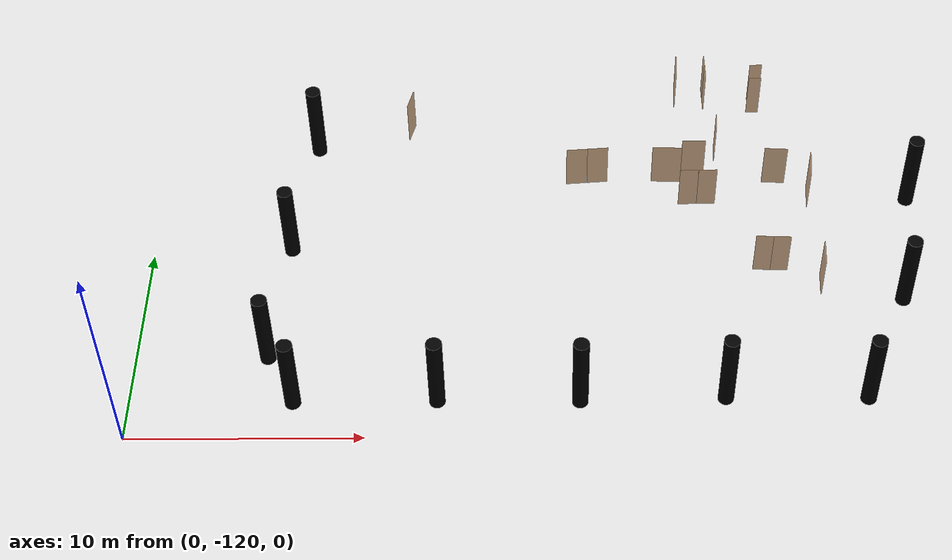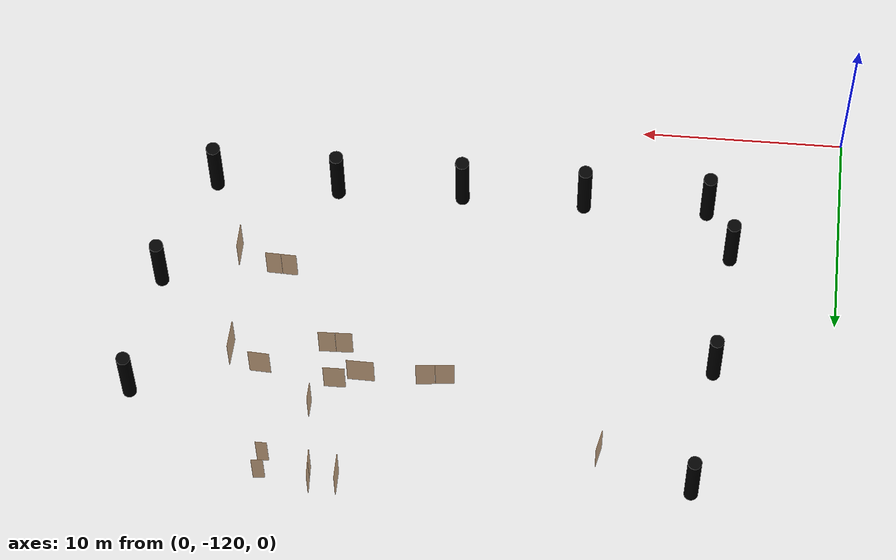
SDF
<sdf version="1.7">
 <world name="world">
  <model name="D70">
   <pose>23.8285 -99.9244 0 0 0 -1.60901</pose>
   <link name="right">
    <pose>0 0 1.11 0 -0 0</pose>
    <visual name="right_visual">
     <geometry><box><size>1.20666 0.03 2.2</size></box></geometry>
     <material><ambient>0.5 0.25 0 0.6</ambient><diffuse>0.5 0.25 0 0.6</diffuse></material>
    </visual>
    <collision name="right_collision">
     <geometry><box><size>1.20666 0.03 2.2</size></box></geometry>
     <surface><contact><collide_bitmask>2</collide_bitmask></contact></surface>
    </collision>
    <inertial>
     <mass>50</mass>
     <inertia><ixx>20.1704</ixx><iyy>26.2335</iyy><izz>6.07056</izz><ixy>0</ixy><ixz>0</ixz><iyz>0</iyz></inertia>
    </inertial>
   </link>
   <joint name="right_joint" type="revolute">
    <parent>world</parent>
    <child>right</child>
    <axis>
     <xyz>0 0 1</xyz>
     <limit><lower>0</lower><upper>1.57</upper></limit>
     <dynamics><spring_reference>0</spring_reference><spring_stiffness>0</spring_stiffness></dynamics>
    </axis>
    <pose>0.608331 0 0 0 -0 0</pose>
   </joint>
   <plugin name="door_D70" filename="libdoor.so">
    <v_max_door>0.5</v_max_door>
    <a_max_door>0.3</a_max_door>
    <a_nom_door>0.15</a_nom_door>
    <dx_min_door>0.01</dx_min_door>
    <f_max_door>500.0</f_max_door>
    <door name="D70" type="SwingDoor" left_joint_name="empty_joint" right_joint_name="right_joint"/>
   </plugin>
  </model>
  <model name="D71">
   <pose>27.6293 -99.9583 0 0 -0 0.083125</pose>
   <link name="right">
    <pose>0 0 1.11 0 -0 0</pose>
    <visual name="right_visual">
     <geometry><box><size>0.578492 0.03 2.2</size></box></geometry>
     <material><ambient>0.5 0.25 0 0.6</ambient><diffuse>0.5 0.25 0 0.6</diffuse></material>
    </visual>
    <collision name="right_collision">
     <geometry><box><size>0.578492 0.03 2.2</size></box></geometry>
     <surface><contact><collide_bitmask>2</collide_bitmask></contact></surface>
    </collision>
    <inertial>
     <mass>50</mass>
     <inertia><ixx>20.1704</ixx><iyy>21.5611</iyy><izz>1.39814</izz><ixy>0</ixy><ixz>0</ixz><iyz>0</iyz></inertia>
    </inertial>
   </link>
   <joint name="right_joint" type="revolute">
    <parent>world</parent>
    <child>right</child>
    <axis>
     <xyz>0 0 -1</xyz>
     <limit><lower>0</lower><upper>1.57</upper></limit>
     <dynamics><spring_reference>0</spring_reference><spring_stiffness>0</spring_stiffness></dynamics>
    </axis>
    <pose>0.294246 0 0 0 -0 0</pose>
   </joint>
   <plugin name="door_D71" filename="libdoor.so">
    <v_max_door>0.5</v_max_door>
    <a_max_door>0.3</a_max_door>
    <a_nom_door>0.15</a_nom_door>
    <dx_min_door>0.01</dx_min_door>
    <f_max_door>500.0</f_max_door>
    <door name="D71" type="SwingDoor" left_joint_name="empty_joint" right_joint_name="right_joint"/>
   </plugin>
  </model>
  <model name="D72">
   <pose>27.5189 -100.877 -0 0 0 -0.018329</pose>
   <link name="right">
    <pose>0 0 1.11 0 -0 0</pose>
    <visual name="right_visual">
     <geometry><box><size>0.571456 0.03 2.2</size></box></geometry>
     <material><ambient>0.5 0.25 0 0.6</ambient><diffuse>0.5 0.25 0 0.6</diffuse></material>
    </visual>
    <collision name="right_collision">
     <geometry><box><size>0.571456 0.03 2.2</size></box></geometry>
     <surface><contact><collide_bitmask>2</collide_bitmask></contact></surface>
    </collision>
    <inertial>
     <mass>50</mass>
     <inertia><ixx>20.1704</ixx><iyy>21.5273</iyy><izz>1.36443</izz><ixy>0</ixy><ixz>0</ixz><iyz>0</iyz></inertia>
    </inertial>
   </link>
   <joint name="right_joint" type="revolute">
    <parent>world</parent>
    <child>right</child>
    <axis>
     <xyz>0 0 1</xyz>
     <limit><lower>0</lower><upper>1.57</upper></limit>
     <dynamics><spring_reference>0</spring_reference><spring_stiffness>0</spring_stiffness></dynamics>
    </axis>
    <pose>0.290728 0 0 0 -0 0</pose>
   </joint>
   <plugin name="door_D72" filename="libdoor.so">
    <v_max_door>0.5</v_max_door>
    <a_max_door>0.3</a_max_door>
    <a_nom_door>0.15</a_nom_door>
    <dx_min_door>0.01</dx_min_door>
    <f_max_door>500.0</f_max_door>
    <door name="D72" type="SwingDoor" left_joint_name="empty_joint" right_joint_name="right_joint"/>
   </plugin>
  </model>
  <model name="D73">
   <pose>25.4949 -103.731 -0 0 0 -1.63114</pose>
   <link name="right">
    <pose>0 0 1.11 0 -0 0</pose>
    <visual name="right_visual">
     <geometry><box><size>0.837846 0.03 2.2</size></box></geometry>
     <material><ambient>0.5 0.25 0 0.6</ambient><diffuse>0.5 0.25 0 0.6</diffuse></material>
    </visual>
    <collision name="right_collision">
     <geometry><box><size>0.837846 0.03 2.2</size></box></geometry>
     <surface><contact><collide_bitmask>2</collide_bitmask></contact></surface>
    </collision>
    <inertial>
     <mass>50</mass>
     <inertia><ixx>20.1704</ixx><iyy>23.0916</iyy><izz>2.92869</izz><ixy>0</ixy><ixz>0</ixz><iyz>0</iyz></inertia>
    </inertial>
   </link>
   <joint name="right_joint" type="revolute">
    <parent>world</parent>
    <child>right</child>
    <axis>
     <xyz>0 0 1</xyz>
     <limit><lower>0</lower><upper>1.57</upper></limit>
     <dynamics><spring_reference>0</spring_reference><spring_stiffness>0</spring_stiffness></dynamics>
    </axis>
    <pose>0.423923 0 0 0 -0 0</pose>
   </joint>
   <plugin name="door_D73" filename="libdoor.so">
    <v_max_door>0.5</v_max_door>
    <a_max_door>0.3</a_max_door>
    <a_nom_door>0.15</a_nom_door>
    <dx_min_door>0.01</dx_min_door>
    <f_max_door>500.0</f_max_door>
    <door name="D73" type="SwingDoor" left_joint_name="empty_joint" right_joint_name="right_joint"/>
   </plugin>
  </model>
  <model name="D74">
   <pose>24.3844 -105.005 0 0 -0 3.14159</pose>
   <link name="right">
    <pose>0 0 1.11 0 -0 0</pose>
    <visual name="right_visual">
     <geometry><box><size>1.06712 0.03 2.2</size></box></geometry>
     <material><ambient>0.5 0.25 0 0.6</ambient><diffuse>0.5 0.25 0 0.6</diffuse></material>
    </visual>
    <collision name="right_collision">
     <geometry><box><size>1.06712 0.03 2.2</size></box></geometry>
     <surface><contact><collide_bitmask>2</collide_bitmask></contact></surface>
    </collision>
    <inertial>
     <mass>50</mass>
     <inertia><ixx>20.1704</ixx><iyy>24.9115</iyy><izz>4.74855</izz><ixy>0</ixy><ixz>0</ixz><iyz>0</iyz></inertia>
    </inertial>
   </link>
   <joint name="right_joint" type="revolute">
    <parent>world</parent>
    <child>right</child>
    <axis>
     <xyz>0 0 1</xyz>
     <limit><lower>0</lower><upper>1.57</upper></limit>
     <dynamics><spring_reference>0</spring_reference><spring_stiffness>0</spring_stiffness></dynamics>
    </axis>
    <pose>0.538562 0 0 0 -0 0</pose>
   </joint>
   <plugin name="door_D74" filename="libdoor.so">
    <v_max_door>0.5</v_max_door>
    <a_max_door>0.3</a_max_door>
    <a_nom_door>0.15</a_nom_door>
    <dx_min_door>0.01</dx_min_door>
    <f_max_door>500.0</f_max_door>
    <door name="D74" type="SwingDoor" left_joint_name="empty_joint" right_joint_name="right_joint"/>
   </plugin>
  </model>
  <model name="D75">
   <pose>23.136 -105.456 -0 0 -0 3.1149</pose>
   <link name="right">
    <pose>0 0 1.11 0 -0 0</pose>
    <visual name="right_visual">
     <geometry><box><size>1.34491 0.03 2.2</size></box></geometry>
     <material><ambient>0.5 0.25 0 0.6</ambient><diffuse>0.5 0.25 0 0.6</diffuse></material>
    </visual>
    <collision name="right_collision">
     <geometry><box><size>1.34491 0.03 2.2</size></box></geometry>
     <surface><contact><collide_bitmask>2</collide_bitmask></contact></surface>
    </collision>
    <inertial>
     <mass>50</mass>
     <inertia><ixx>20.1704</ixx><iyy>27.7032</iyy><izz>7.54032</izz><ixy>0</ixy><ixz>0</ixz><iyz>0</iyz></inertia>
    </inertial>
   </link>
   <joint name="right_joint" type="revolute">
    <parent>world</parent>
    <child>right</child>
    <axis>
     <xyz>0 0 -1</xyz>
     <limit><lower>0</lower><upper>1.57</upper></limit>
     <dynamics><spring_reference>0</spring_reference><spring_stiffness>0</spring_stiffness></dynamics>
    </axis>
    <pose>0.677454 0 0 0 -0 0</pose>
   </joint>
   <plugin name="door_D75" filename="libdoor.so">
    <v_max_door>0.5</v_max_door>
    <a_max_door>0.3</a_max_door>
    <a_nom_door>0.15</a_nom_door>
    <dx_min_door>0.01</dx_min_door>
    <f_max_door>500.0</f_max_door>
    <door name="D75" type="SwingDoor" left_joint_name="empty_joint" right_joint_name="right_joint"/>
   </plugin>
  </model>
  <model name="D76">
   <pose>28.1097 -105.554 0 0 -0 3.08127</pose>
   <link name="right">
    <pose>0 0 1.11 0 -0 0</pose>
    <visual name="right_visual">
     <geometry><box><size>1.05069 0.03 2.2</size></box></geometry>
     <material><ambient>0.5 0.25 0 0.6</ambient><diffuse>0.5 0.25 0 0.6</diffuse></material>
    </visual>
    <collision name="right_collision">
     <geometry><box><size>1.05069 0.03 2.2</size></box></geometry>
     <surface><contact><collide_bitmask>2</collide_bitmask></contact></surface>
    </collision>
    <inertial>
     <mass>50</mass>
     <inertia><ixx>20.1704</ixx><iyy>24.7664</iyy><izz>4.60351</izz><ixy>0</ixy><ixz>0</ixz><iyz>0</iyz></inertia>
    </inertial>
   </link>
   <joint name="right_joint" type="revolute">
    <parent>world</parent>
    <child>right</child>
    <axis>
     <xyz>0 0 1</xyz>
     <limit><lower>0</lower><upper>1.57</upper></limit>
     <dynamics><spring_reference>0</spring_reference><spring_stiffness>0</spring_stiffness></dynamics>
    </axis>
    <pose>0.530343 0 0 0 -0 0</pose>
   </joint>
   <plugin name="door_D76" filename="libdoor.so">
    <v_max_door>0.5</v_max_door>
    <a_max_door>0.3</a_max_door>
    <a_nom_door>0.15</a_nom_door>
    <dx_min_door>0.01</dx_min_door>
    <f_max_door>500.0</f_max_door>
    <door name="D76" type="SwingDoor" left_joint_name="empty_joint" right_joint_name="right_joint"/>
   </plugin>
  </model>
  <model name="D77">
   <pose>29.6018 -106.475 -0 0 -0 1.48529</pose>
   <link name="right">
    <pose>0 0 1.11 0 -0 0</pose>
    <visual name="right_visual">
     <geometry><box><size>1.35736 0.03 2.2</size></box></geometry>
     <material><ambient>0.5 0.25 0 0.6</ambient><diffuse>0.5 0.25 0 0.6</diffuse></material>
    </visual>
    <collision name="right_collision">
     <geometry><box><size>1.35736 0.03 2.2</size></box></geometry>
     <surface><contact><collide_bitmask>2</collide_bitmask></contact></surface>
    </collision>
    <inertial>
     <mass>50</mass>
     <inertia><ixx>20.1704</ixx><iyy>27.8434</iyy><izz>7.68048</izz><ixy>0</ixy><ixz>0</ixz><iyz>0</iyz></inertia>
    </inertial>
   </link>
   <joint name="right_joint" type="revolute">
    <parent>world</parent>
    <child>right</child>
    <axis>
     <xyz>0 0 1</xyz>
     <limit><lower>0</lower><upper>1.57</upper></limit>
     <dynamics><spring_reference>0</spring_reference><spring_stiffness>0</spring_stiffness></dynamics>
    </axis>
    <pose>0.683678 0 0 0 -0 0</pose>
   </joint>
   <plugin name="door_D77" filename="libdoor.so">
    <v_max_door>0.5</v_max_door>
    <a_max_door>0.3</a_max_door>
    <a_nom_door>0.15</a_nom_door>
    <dx_min_door>0.01</dx_min_door>
    <f_max_door>500.0</f_max_door>
    <door name="D77" type="SwingDoor" left_joint_name="empty_joint" right_joint_name="right_joint"/>
   </plugin>
  </model>
  <model name="D78">
   <pose>29.6954 -111.814 -0 0 -0 1.51211</pose>
   <link name="right">
    <pose>0 0 1.11 0 -0 0</pose>
    <visual name="right_visual">
     <geometry><box><size>1.17675 0.03 2.2</size></box></geometry>
     <material><ambient>0.5 0.25 0 0.6</ambient><diffuse>0.5 0.25 0 0.6</diffuse></material>
    </visual>
    <collision name="right_collision">
     <geometry><box><size>1.17675 0.03 2.2</size></box></geometry>
     <surface><contact><collide_bitmask>2</collide_bitmask></contact></surface>
    </collision>
    <inertial>
     <mass>50</mass>
     <inertia><ixx>20.1704</ixx><iyy>25.9365</iyy><izz>5.77354</izz><ixy>0</ixy><ixz>0</ixz><iyz>0</iyz></inertia>
    </inertial>
   </link>
   <joint name="right_joint" type="revolute">
    <parent>world</parent>
    <child>right</child>
    <axis>
     <xyz>0 0 1</xyz>
     <limit><lower>0</lower><upper>1.57</upper></limit>
     <dynamics><spring_reference>0</spring_reference><spring_stiffness>0</spring_stiffness></dynamics>
    </axis>
    <pose>0.593377 0 0 0 -0 0</pose>
   </joint>
   <plugin name="door_D78" filename="libdoor.so">
    <v_max_door>0.5</v_max_door>
    <a_max_door>0.3</a_max_door>
    <a_nom_door>0.15</a_nom_door>
    <dx_min_door>0.01</dx_min_door>
    <f_max_door>500.0</f_max_door>
    <door name="D78" type="SwingDoor" left_joint_name="empty_joint" right_joint_name="right_joint"/>
   </plugin>
  </model>
  <model name="D79">
   <pose>11.2657 -102.182 0 0 -0 1.32947</pose>
   <link name="right">
    <pose>0 0 1.11 0 -0 0</pose>
    <visual name="right_visual">
     <geometry><box><size>1.03505 0.03 2.2</size></box></geometry>
     <material><ambient>0.5 0.25 0 0.6</ambient><diffuse>0.5 0.25 0 0.6</diffuse></material>
    </visual>
    <collision name="right_collision">
     <geometry><box><size>1.03505 0.03 2.2</size></box></geometry>
     <surface><contact><collide_bitmask>2</collide_bitmask></contact></surface>
    </collision>
    <inertial>
     <mass>50</mass>
     <inertia><ixx>20.1704</ixx><iyy>24.6306</iyy><izz>4.46764</izz><ixy>0</ixy><ixz>0</ixz><iyz>0</iyz></inertia>
    </inertial>
   </link>
   <joint name="right_joint" type="revolute">
    <parent>world</parent>
    <child>right</child>
    <axis>
     <xyz>0 0 1</xyz>
     <limit><lower>0</lower><upper>1.57</upper></limit>
     <dynamics><spring_reference>0</spring_reference><spring_stiffness>0</spring_stiffness></dynamics>
    </axis>
    <pose>0.522526 0 0 0 -0 0</pose>
   </joint>
   <plugin name="door_D79" filename="libdoor.so">
    <v_max_door>0.5</v_max_door>
    <a_max_door>0.3</a_max_door>
    <a_nom_door>0.15</a_nom_door>
    <dx_min_door>0.01</dx_min_door>
    <f_max_door>500.0</f_max_door>
    <door name="D79" type="SwingDoor" left_joint_name="empty_joint" right_joint_name="right_joint"/>
   </plugin>
  </model>
  <model name="DH12">
   <pose>25.1811 -100.001 -0 0 -0 1.58151</pose>
   <link name="right">
    <pose>0.343926 0 1.11 0 -0 0</pose>
    <visual name="right_visual">
     <geometry><box><size>0.677852 0.03 2.2</size></box></geometry>
     <material><ambient>0.5 0.25 0 0.6</ambient><diffuse>0.5 0.25 0 0.6</diffuse></material>
    </visual>
    <collision name="right_collision">
     <geometry><box><size>0.677852 0.03 2.2</size></box></geometry>
     <surface><contact><collide_bitmask>2</collide_bitmask></contact></surface>
    </collision>
    <inertial>
     <mass>50</mass>
     <inertia><ixx>20.1704</ixx><iyy>22.0812</iyy><izz>1.91826</izz><ixy>0</ixy><ixz>0</ixz><iyz>0</iyz></inertia>
    </inertial>
   </link>
   <joint name="right_joint" type="revolute">
    <parent>world</parent>
    <child>right</child>
    <axis>
     <xyz>0 0 -1</xyz>
     <limit><lower>0</lower><upper>1.57</upper></limit>
     <dynamics><spring_reference>0</spring_reference><spring_stiffness>0</spring_stiffness></dynamics>
    </axis>
    <pose>0.343926 0 0 0 -0 0</pose>
   </joint>
   <link name="left">
    <pose>-0.343926 0 1.11 0 -0 0</pose>
    <visual name="left_visual">
     <geometry><box><size>0.677852 0.03 2.2</size></box></geometry>
     <material><ambient>0.5 0.25 0 0.6</ambient><diffuse>0.5 0.25 0 0.6</diffuse></material>
    </visual>
    <collision name="left_collision">
     <geometry><box><size>0.677852 0.03 2.2</size></box></geometry>
     <surface><contact><collide_bitmask>2</collide_bitmask></contact></surface>
    </collision>
    <inertial>
     <mass>50</mass>
     <inertia><ixx>20.1704</ixx><iyy>22.0812</iyy><izz>1.91826</izz><ixy>0</ixy><ixz>0</ixz><iyz>0</iyz></inertia>
    </inertial>
   </link>
   <joint name="left_joint" type="revolute">
    <parent>world</parent>
    <child>left</child>
    <axis>
     <xyz>0 0 -1</xyz>
     <limit><lower>-1.57</lower><upper>0</upper></limit>
     <dynamics><spring_reference>0</spring_reference><spring_stiffness>0</spring_stiffness></dynamics>
    </axis>
    <pose>-0.343926 0 0 0 -0 0</pose>
   </joint>
   <plugin name="door_DH12" filename="libdoor.so">
    <v_max_door>0.5</v_max_door>
    <a_max_door>0.3</a_max_door>
    <a_nom_door>0.15</a_nom_door>
    <dx_min_door>0.01</dx_min_door>
    <f_max_door>500.0</f_max_door>
    <door name="DH12" type="DoubleSwingDoor" left_joint_name="left_joint" right_joint_name="right_joint"/>
   </plugin>
  </model>
  <model name="DH13">
   <pose>19.4764 -105.514 0 0 -0 -3.06198</pose>
   <link name="right">
    <pose>0.47684 0 1.11 0 -0 0</pose>
    <visual name="right_visual">
     <geometry><box><size>0.94368 0.03 2.2</size></box></geometry>
     <material><ambient>0.5 0.25 0 0.6</ambient><diffuse>0.5 0.25 0 0.6</diffuse></material>
    </visual>
    <collision name="right_collision">
     <geometry><box><size>0.94368 0.03 2.2</size></box></geometry>
     <surface><contact><collide_bitmask>2</collide_bitmask></contact></surface>
    </collision>
    <inertial>
     <mass>50</mass>
     <inertia><ixx>20.1704</ixx><iyy>23.8772</iyy><izz>3.7143</izz><ixy>0</ixy><ixz>0</ixz><iyz>0</iyz></inertia>
    </inertial>
   </link>
   <joint name="right_joint" type="revolute">
    <parent>world</parent>
    <child>right</child>
    <axis>
     <xyz>0 0 -1</xyz>
     <limit><lower>0</lower><upper>1.57</upper></limit>
     <dynamics><spring_reference>0</spring_reference><spring_stiffness>0</spring_stiffness></dynamics>
    </axis>
    <pose>0.47684 0 0 0 -0 0</pose>
   </joint>
   <link name="left">
    <pose>-0.47684 0 1.11 0 -0 0</pose>
    <visual name="left_visual">
     <geometry><box><size>0.94368 0.03 2.2</size></box></geometry>
     <material><ambient>0.5 0.25 0 0.6</ambient><diffuse>0.5 0.25 0 0.6</diffuse></material>
    </visual>
    <collision name="left_collision">
     <geometry><box><size>0.94368 0.03 2.2</size></box></geometry>
     <surface><contact><collide_bitmask>2</collide_bitmask></contact></surface>
    </collision>
    <inertial>
     <mass>50</mass>
     <inertia><ixx>20.1704</ixx><iyy>23.8772</iyy><izz>3.7143</izz><ixy>0</ixy><ixz>0</ixz><iyz>0</iyz></inertia>
    </inertial>
   </link>
   <joint name="left_joint" type="revolute">
    <parent>world</parent>
    <child>left</child>
    <axis>
     <xyz>0 0 -1</xyz>
     <limit><lower>-1.57</lower><upper>0</upper></limit>
     <dynamics><spring_reference>0</spring_reference><spring_stiffness>0</spring_stiffness></dynamics>
    </axis>
    <pose>-0.47684 0 0 0 -0 0</pose>
   </joint>
   <plugin name="door_DH13" filename="libdoor.so">
    <v_max_door>0.5</v_max_door>
    <a_max_door>0.3</a_max_door>
    <a_nom_door>0.15</a_nom_door>
    <dx_min_door>0.01</dx_min_door>
    <f_max_door>500.0</f_max_door>
    <door name="DH13" type="DoubleSwingDoor" left_joint_name="left_joint" right_joint_name="right_joint"/>
   </plugin>
  </model>
  <model name="DH14">
   <pose>24.4846 -106.881 -0 0 0 -3.1231</pose>
   <link name="right">
    <pose>0.422459 0 1.11 0 -0 0</pose>
    <visual name="right_visual">
     <geometry><box><size>0.834918 0.03 2.2</size></box></geometry>
     <material><ambient>0.5 0.25 0 0.6</ambient><diffuse>0.5 0.25 0 0.6</diffuse></material>
    </visual>
    <collision name="right_collision">
     <geometry><box><size>0.834918 0.03 2.2</size></box></geometry>
     <surface><contact><collide_bitmask>2</collide_bitmask></contact></surface>
    </collision>
    <inertial>
     <mass>50</mass>
     <inertia><ixx>20.1704</ixx><iyy>23.0712</iyy><izz>2.90828</izz><ixy>0</ixy><ixz>0</ixz><iyz>0</iyz></inertia>
    </inertial>
   </link>
   <joint name="right_joint" type="revolute">
    <parent>world</parent>
    <child>right</child>
    <axis>
     <xyz>0 0 -1</xyz>
     <limit><lower>0</lower><upper>1.57</upper></limit>
     <dynamics><spring_reference>0</spring_reference><spring_stiffness>0</spring_stiffness></dynamics>
    </axis>
    <pose>0.422459 0 0 0 -0 0</pose>
   </joint>
   <link name="left">
    <pose>-0.422459 0 1.11 0 -0 0</pose>
    <visual name="left_visual">
     <geometry><box><size>0.834918 0.03 2.2</size></box></geometry>
     <material><ambient>0.5 0.25 0 0.6</ambient><diffuse>0.5 0.25 0 0.6</diffuse></material>
    </visual>
    <collision name="left_collision">
     <geometry><box><size>0.834918 0.03 2.2</size></box></geometry>
     <surface><contact><collide_bitmask>2</collide_bitmask></contact></surface>
    </collision>
    <inertial>
     <mass>50</mass>
     <inertia><ixx>20.1704</ixx><iyy>23.0712</iyy><izz>2.90828</izz><ixy>0</ixy><ixz>0</ixz><iyz>0</iyz></inertia>
    </inertial>
   </link>
   <joint name="left_joint" type="revolute">
    <parent>world</parent>
    <child>left</child>
    <axis>
     <xyz>0 0 -1</xyz>
     <limit><lower>-1.57</lower><upper>0</upper></limit>
     <dynamics><spring_reference>0</spring_reference><spring_stiffness>0</spring_stiffness></dynamics>
    </axis>
    <pose>-0.422459 0 0 0 -0 0</pose>
   </joint>
   <plugin name="door_DH14" filename="libdoor.so">
    <v_max_door>0.5</v_max_door>
    <a_max_door>0.3</a_max_door>
    <a_nom_door>0.15</a_nom_door>
    <dx_min_door>0.01</dx_min_door>
    <f_max_door>500.0</f_max_door>
    <door name="DH14" type="DoubleSwingDoor" left_joint_name="left_joint" right_joint_name="right_joint"/>
   </plugin>
  </model>
  <model name="DH15">
   <pose>27.5258 -110.926 0 0 -0 3.0996</pose>
   <link name="right">
    <pose>0.386363 0 1.11 0 -0 0</pose>
    <visual name="right_visual">
     <geometry><box><size>0.762727 0.03 2.2</size></box></geometry>
     <material><ambient>0.5 0.25 0 0.6</ambient><diffuse>0.5 0.25 0 0.6</diffuse></material>
    </visual>
    <collision name="right_collision">
     <geometry><box><size>0.762727 0.03 2.2</size></box></geometry>
     <surface><contact><collide_bitmask>2</collide_bitmask></contact></surface>
    </collision>
    <inertial>
     <mass>50</mass>
     <inertia><ixx>20.1704</ixx><iyy>22.5906</iyy><izz>2.42772</izz><ixy>0</ixy><ixz>0</ixz><iyz>0</iyz></inertia>
    </inertial>
   </link>
   <joint name="right_joint" type="revolute">
    <parent>world</parent>
    <child>right</child>
    <axis>
     <xyz>0 0 -1</xyz>
     <limit><lower>0</lower><upper>1.57</upper></limit>
     <dynamics><spring_reference>0</spring_reference><spring_stiffness>0</spring_stiffness></dynamics>
    </axis>
    <pose>0.386363 0 0 0 -0 0</pose>
   </joint>
   <link name="left">
    <pose>-0.386363 0 1.11 0 -0 0</pose>
    <visual name="left_visual">
     <geometry><box><size>0.762727 0.03 2.2</size></box></geometry>
     <material><ambient>0.5 0.25 0 0.6</ambient><diffuse>0.5 0.25 0 0.6</diffuse></material>
    </visual>
    <collision name="left_collision">
     <geometry><box><size>0.762727 0.03 2.2</size></box></geometry>
     <surface><contact><collide_bitmask>2</collide_bitmask></contact></surface>
    </collision>
    <inertial>
     <mass>50</mass>
     <inertia><ixx>20.1704</ixx><iyy>22.5906</iyy><izz>2.42772</izz><ixy>0</ixy><ixz>0</ixz><iyz>0</iyz></inertia>
    </inertial>
   </link>
   <joint name="left_joint" type="revolute">
    <parent>world</parent>
    <child>left</child>
    <axis>
     <xyz>0 0 -1</xyz>
     <limit><lower>-1.57</lower><upper>0</upper></limit>
     <dynamics><spring_reference>0</spring_reference><spring_stiffness>0</spring_stiffness></dynamics>
    </axis>
    <pose>-0.386363 0 0 0 -0 0</pose>
   </joint>
   <plugin name="door_DH15" filename="libdoor.so">
    <v_max_door>0.5</v_max_door>
    <a_max_door>0.3</a_max_door>
    <a_nom_door>0.15</a_nom_door>
    <dx_min_door>0.01</dx_min_door>
    <f_max_door>500.0</f_max_door>
    <door name="DH15" type="DoubleSwingDoor" left_joint_name="left_joint" right_joint_name="right_joint"/>
   </plugin>
  </model>
  <model name="CylinderBlock">
   <link name="link">
    <inertial>
     <mass>1</mass>
     <inertia><ixx>1</ixx><ixy>0</ixy><ixz>0</ixz><iyy>1</iyy><iyz>0</iyz><izz>1</izz></inertia>
    </inertial>
    <visual name="visual">
     <geometry><cylinder><radius>0.35</radius><length>4.0</length></cylinder></geometry>
     <material>
      <shader type="pixel"><normal_map>__default__</normal_map></shader>
      <script><name>ModelPreview_1::link::visual_MATERIAL_</name><uri>__default__</uri></script>
      <ambient>0 0 0 1</ambient>
      <diffuse>0 0 0 1</diffuse>
      <specular>0 0 0 1</specular>
      <emissive>0 0 0 1</emissive>
     </material>
    </visual>
    <collision name="collision">
     <geometry><cylinder><radius>0.35</radius><length>4.0</length></cylinder></geometry>
     <surface>
      <friction>
       <ode><mu>1</mu><mu2>1</mu2><fdir1>0 0 0</fdir1><slip1>0</slip1><slip2>0</slip2></ode>
       <torsional>
        <coefficient>1</coefficient>
        <patch_radius>0</patch_radius>
        <surface_radius>0</surface_radius>
        <use_patch_radius>1</use_patch_radius>
        <ode><slip>0</slip></ode>
       </torsional>
      </friction>
      <bounce><restitution_coefficient>0</restitution_coefficient><threshold>1e+06</threshold></bounce>
      <contact>
       <collide_without_contact>0</collide_without_contact>
       <collide_without_contact_bitmask>1</collide_without_contact_bitmask>
       <collide_bitmask>1</collide_bitmask>
       <ode>
        <soft_cfm>0</soft_cfm>
        <soft_erp>0.2</soft_erp>
        <kp>1e+13</kp>
        <kd>1</kd>
        <max_vel>0.01</max_vel>
        <min_depth>0</min_depth>
       </ode>
       <bullet>
        <split_impulse>1</split_impulse>
        <split_impulse_penetration_threshold>-0.01</split_impulse_penetration_threshold>
        <soft_cfm>0</soft_cfm>
        <soft_erp>0.2</soft_erp>
        <kp>1e+13</kp>
        <kd>1</kd>
       </bullet>
      </contact>
     </surface>
    </collision>
   </link>
   <static>1</static>
   <pose>31.4987 -116.615 0 0 -0 0</pose>
  </model>
  <model name="CylinderBlock_0">
   <link name="link">
    <inertial>
     <mass>1</mass>
     <inertia><ixx>1</ixx><ixy>0</ixy><ixz>0</ixz><iyy>1</iyy><iyz>0</iyz><izz>1</izz></inertia>
    </inertial>
    <visual name="visual">
     <geometry><cylinder><radius>0.35</radius><length>4.0</length></cylinder></geometry>
     <material>
      <shader type="pixel"><normal_map>__default__</normal_map></shader>
      <script><name>ModelPreview_1::link::visual_MATERIAL_</name><uri>__default__</uri></script>
      <ambient>0 0 0 1</ambient>
      <diffuse>0 0 0 1</diffuse>
      <specular>0 0 0 1</specular>
      <emissive>0 0 0 1</emissive>
     </material>
    </visual>
    <collision name="collision">
     <geometry><cylinder><radius>0.35</radius><length>4.0</length></cylinder></geometry>
     <surface>
      <friction>
       <ode><mu>1</mu><mu2>1</mu2><fdir1>0 0 0</fdir1><slip1>0</slip1><slip2>0</slip2></ode>
       <torsional>
        <coefficient>1</coefficient>
        <patch_radius>0</patch_radius>
        <surface_radius>0</surface_radius>
        <use_patch_radius>1</use_patch_radius>
        <ode><slip>0</slip></ode>
       </torsional>
      </friction>
      <bounce><restitution_coefficient>0</restitution_coefficient><threshold>1e+06</threshold></bounce>
      <contact>
       <collide_without_contact>0</collide_without_contact>
       <collide_without_contact_bitmask>1</collide_without_contact_bitmask>
       <collide_bitmask>1</collide_bitmask>
       <ode>
        <soft_cfm>0</soft_cfm>
        <soft_erp>0.2</soft_erp>
        <kp>1e+13</kp>
        <kd>1</kd>
        <max_vel>0.01</max_vel>
        <min_depth>0</min_depth>
       </ode>
       <bullet>
        <split_impulse>1</split_impulse>
        <split_impulse_penetration_threshold>-0.01</split_impulse_penetration_threshold>
        <soft_cfm>0</soft_cfm>
        <soft_erp>0.2</soft_erp>
        <kp>1e+13</kp>
        <kd>1</kd>
       </bullet>
      </contact>
     </surface>
    </collision>
   </link>
   <static>1</static>
   <pose>25.3062 -116.571 0 0 -0 0</pose>
  </model>
  <model name="CylinderBlock_1">
   <link name="link">
    <inertial>
     <mass>1</mass>
     <inertia><ixx>1</ixx><ixy>0</ixy><ixz>0</ixz><iyy>1</iyy><iyz>0</iyz><izz>1</izz></inertia>
    </inertial>
    <visual name="visual">
     <geometry><cylinder><radius>0.35</radius><length>4.0</length></cylinder></geometry>
     <material>
      <shader type="pixel"><normal_map>__default__</normal_map></shader>
      <script><name>ModelPreview_1::link::visual_MATERIAL_</name><uri>__default__</uri></script>
      <ambient>0 0 0 1</ambient>
      <diffuse>0 0 0 1</diffuse>
      <specular>0 0 0 1</specular>
      <emissive>0 0 0 1</emissive>
     </material>
    </visual>
    <collision name="collision">
     <geometry><cylinder><radius>0.35</radius><length>4.0</length></cylinder></geometry>
     <surface>
      <friction>
       <ode><mu>1</mu><mu2>1</mu2><fdir1>0 0 0</fdir1><slip1>0</slip1><slip2>0</slip2></ode>
       <torsional>
        <coefficient>1</coefficient>
        <patch_radius>0</patch_radius>
        <surface_radius>0</surface_radius>
        <use_patch_radius>1</use_patch_radius>
        <ode><slip>0</slip></ode>
       </torsional>
      </friction>
      <bounce><restitution_coefficient>0</restitution_coefficient><threshold>1e+06</threshold></bounce>
      <contact>
       <collide_without_contact>0</collide_without_contact>
       <collide_without_contact_bitmask>1</collide_without_contact_bitmask>
       <collide_bitmask>1</collide_bitmask>
       <ode>
        <soft_cfm>0</soft_cfm>
        <soft_erp>0.2</soft_erp>
        <kp>1e+13</kp>
        <kd>1</kd>
        <max_vel>0.01</max_vel>
        <min_depth>0</min_depth>
       </ode>
       <bullet>
        <split_impulse>1</split_impulse>
        <split_impulse_penetration_threshold>-0.01</split_impulse_penetration_threshold>
        <soft_cfm>0</soft_cfm>
        <soft_erp>0.2</soft_erp>
        <kp>1e+13</kp>
        <kd>1</kd>
       </bullet>
      </contact>
     </surface>
    </collision>
   </link>
   <static>1</static>
   <pose>18.9863 -116.702 0 0 -0 0</pose>
  </model>
  <model name="CylinderBlock_2">
   <link name="link">
    <inertial>
     <mass>1</mass>
     <inertia><ixx>1</ixx><ixy>0</ixy><ixz>0</ixz><iyy>1</iyy><iyz>0</iyz><izz>1</izz></inertia>
    </inertial>
    <visual name="visual">
     <geometry><cylinder><radius>0.35</radius><length>4.0</length></cylinder></geometry>
     <material>
      <shader type="pixel"><normal_map>__default__</normal_map></shader>
      <script><name>ModelPreview_1::link::visual_MATERIAL_</name><uri>__default__</uri></script>
      <ambient>0 0 0 1</ambient>
      <diffuse>0 0 0 1</diffuse>
      <specular>0 0 0 1</specular>
      <emissive>0 0 0 1</emissive>
     </material>
    </visual>
    <collision name="collision">
     <geometry><cylinder><radius>0.35</radius><length>4.0</length></cylinder></geometry>
     <surface>
      <friction>
       <ode><mu>1</mu><mu2>1</mu2><fdir1>0 0 0</fdir1><slip1>0</slip1><slip2>0</slip2></ode>
       <torsional>
        <coefficient>1</coefficient>
        <patch_radius>0</patch_radius>
        <surface_radius>0</surface_radius>
        <use_patch_radius>1</use_patch_radius>
        <ode><slip>0</slip></ode>
       </torsional>
      </friction>
      <bounce><restitution_coefficient>0</restitution_coefficient><threshold>1e+06</threshold></bounce>
      <contact>
       <collide_without_contact>0</collide_without_contact>
       <collide_without_contact_bitmask>1</collide_without_contact_bitmask>
       <collide_bitmask>1</collide_bitmask>
       <ode>
        <soft_cfm>0</soft_cfm>
        <soft_erp>0.2</soft_erp>
        <kp>1e+13</kp>
        <kd>1</kd>
        <max_vel>0.01</max_vel>
        <min_depth>0</min_depth>
       </ode>
       <bullet>
        <split_impulse>1</split_impulse>
        <split_impulse_penetration_threshold>-0.01</split_impulse_penetration_threshold>
        <soft_cfm>0</soft_cfm>
        <soft_erp>0.2</soft_erp>
        <kp>1e+13</kp>
        <kd>1</kd>
       </bullet>
      </contact>
     </surface>
    </collision>
   </link>
   <static>1</static>
   <pose>12.8044 -116.66 0 0 -0 0</pose>
  </model>
  <model name="CylinderBlock_3">
   <link name="link">
    <inertial>
     <mass>1</mass>
     <inertia><ixx>1</ixx><ixy>0</ixy><ixz>0</ixz><iyy>1</iyy><iyz>0</iyz><izz>1</izz></inertia>
    </inertial>
    <visual name="visual">
     <geometry><cylinder><radius>0.35</radius><length>4.0</length></cylinder></geometry>
     <material>
      <shader type="pixel"><normal_map>__default__</normal_map></shader>
      <script><name>ModelPreview_1::link::visual_MATERIAL_</name><uri>__default__</uri></script>
      <ambient>0 0 0 1</ambient>
      <diffuse>0 0 0 1</diffuse>
      <specular>0 0 0 1</specular>
      <emissive>0 0 0 1</emissive>
     </material>
    </visual>
    <collision name="collision">
     <geometry><cylinder><radius>0.35</radius><length>4.0</length></cylinder></geometry>
     <surface>
      <friction>
       <ode><mu>1</mu><mu2>1</mu2><fdir1>0 0 0</fdir1><slip1>0</slip1><slip2>0</slip2></ode>
       <torsional>
        <coefficient>1</coefficient>
        <patch_radius>0</patch_radius>
        <surface_radius>0</surface_radius>
        <use_patch_radius>1</use_patch_radius>
        <ode><slip>0</slip></ode>
       </torsional>
      </friction>
      <bounce><restitution_coefficient>0</restitution_coefficient><threshold>1e+06</threshold></bounce>
      <contact>
       <collide_without_contact>0</collide_without_contact>
       <collide_without_contact_bitmask>1</collide_without_contact_bitmask>
       <collide_bitmask>1</collide_bitmask>
       <ode>
        <soft_cfm>0</soft_cfm>
        <soft_erp>0.2</soft_erp>
        <kp>1e+13</kp>
        <kd>1</kd>
        <max_vel>0.01</max_vel>
        <min_depth>0</min_depth>
       </ode>
       <bullet>
        <split_impulse>1</split_impulse>
        <split_impulse_penetration_threshold>-0.01</split_impulse_penetration_threshold>
        <soft_cfm>0</soft_cfm>
        <soft_erp>0.2</soft_erp>
        <kp>1e+13</kp>
        <kd>1</kd>
       </bullet>
      </contact>
     </surface>
    </collision>
   </link>
   <static>1</static>
   <pose>6.55628 -116.696 0 0 -0 0</pose>
  </model>
  <model name="CylinderBlock_4">
   <link name="link">
    <inertial>
     <mass>1</mass>
     <inertia><ixx>1</ixx><ixy>0</ixy><ixz>0</ixz><iyy>1</iyy><iyz>0</iyz><izz>1</izz></inertia>
    </inertial>
    <visual name="visual">
     <geometry><cylinder><radius>0.35</radius><length>4.0</length></cylinder></geometry>
     <material>
      <shader type="pixel"><normal_map>__default__</normal_map></shader>
      <script><name>ModelPreview_1::link::visual_MATERIAL_</name><uri>__default__</uri></script>
      <ambient>0 0 0 1</ambient>
      <diffuse>0 0 0 1</diffuse>
      <specular>0 0 0 1</specular>
      <emissive>0 0 0 1</emissive>
     </material>
    </visual>
    <collision name="collision">
     <geometry><cylinder><radius>0.35</radius><length>4.0</length></cylinder></geometry>
     <surface>
      <friction>
       <ode><mu>1</mu><mu2>1</mu2><fdir1>0 0 0</fdir1><slip1>0</slip1><slip2>0</slip2></ode>
       <torsional>
        <coefficient>1</coefficient>
        <patch_radius>0</patch_radius>
        <surface_radius>0</surface_radius>
        <use_patch_radius>1</use_patch_radius>
        <ode><slip>0</slip></ode>
       </torsional>
      </friction>
      <bounce><restitution_coefficient>0</restitution_coefficient><threshold>1e+06</threshold></bounce>
      <contact>
       <collide_without_contact>0</collide_without_contact>
       <collide_without_contact_bitmask>1</collide_without_contact_bitmask>
       <collide_bitmask>1</collide_bitmask>
       <ode>
        <soft_cfm>0</soft_cfm>
        <soft_erp>0.2</soft_erp>
        <kp>1e+13</kp>
        <kd>1</kd>
        <max_vel>0.01</max_vel>
        <min_depth>0</min_depth>
       </ode>
       <bullet>
        <split_impulse>1</split_impulse>
        <split_impulse_penetration_threshold>-0.01</split_impulse_penetration_threshold>
        <soft_cfm>0</soft_cfm>
        <soft_erp>0.2</soft_erp>
        <kp>1e+13</kp>
        <kd>1</kd>
       </bullet>
      </contact>
     </surface>
    </collision>
   </link>
   <static>1</static>
   <pose>34.6793 -104.885 0 0 -0 0</pose>
  </model>
  <model name="CylinderBlock_5">
   <link name="link">
    <inertial>
     <mass>1</mass>
     <inertia><ixx>1</ixx><ixy>0</ixy><ixz>0</ixz><iyy>1</iyy><iyz>0</iyz><izz>1</izz></inertia>
    </inertial>
    <visual name="visual">
     <geometry><cylinder><radius>0.35</radius><length>4.0</length></cylinder></geometry>
     <material>
      <shader type="pixel"><normal_map>__default__</normal_map></shader>
      <script><name>ModelPreview_1::link::visual_MATERIAL_</name><uri>__default__</uri></script>
      <ambient>0 0 0 1</ambient>
      <diffuse>0 0 0 1</diffuse>
      <specular>0 0 0 1</specular>
      <emissive>0 0 0 1</emissive>
     </material>
    </visual>
    <collision name="collision">
     <geometry><cylinder><radius>0.35</radius><length>4.0</length></cylinder></geometry>
     <surface>
      <friction>
       <ode><mu>1</mu><mu2>1</mu2><fdir1>0 0 0</fdir1><slip1>0</slip1><slip2>0</slip2></ode>
       <torsional>
        <coefficient>1</coefficient>
        <patch_radius>0</patch_radius>
        <surface_radius>0</surface_radius>
        <use_patch_radius>1</use_patch_radius>
        <ode><slip>0</slip></ode>
       </torsional>
      </friction>
      <bounce><restitution_coefficient>0</restitution_coefficient><threshold>1e+06</threshold></bounce>
      <contact>
       <collide_without_contact>0</collide_without_contact>
       <collide_without_contact_bitmask>1</collide_without_contact_bitmask>
       <collide_bitmask>1</collide_bitmask>
       <ode>
        <soft_cfm>0</soft_cfm>
        <soft_erp>0.2</soft_erp>
        <kp>1e+13</kp>
        <kd>1</kd>
        <max_vel>0.01</max_vel>
        <min_depth>0</min_depth>
       </ode>
       <bullet>
        <split_impulse>1</split_impulse>
        <split_impulse_penetration_threshold>-0.01</split_impulse_penetration_threshold>
        <soft_cfm>0</soft_cfm>
        <soft_erp>0.2</soft_erp>
        <kp>1e+13</kp>
        <kd>1</kd>
       </bullet>
      </contact>
     </surface>
    </collision>
   </link>
   <static>1</static>
   <pose>33.7417 -111.056 0 0 -0 0</pose>
  </model>
  <model name="CylinderBlock_33">
   <link name="link">
    <inertial>
     <mass>1</mass>
     <inertia><ixx>1</ixx><ixy>0</ixy><ixz>0</ixz><iyy>1</iyy><iyz>0</iyz><izz>1</izz></inertia>
    </inertial>
    <visual name="visual">
     <geometry><cylinder><radius>0.35</radius><length>4.0</length></cylinder></geometry>
     <material>
      <shader type="pixel"><normal_map>__default__</normal_map></shader>
      <script><name>ModelPreview_1::link::visual_MATERIAL_</name><uri>__default__</uri></script>
      <ambient>0 0 0 1</ambient>
      <diffuse>0 0 0 1</diffuse>
      <specular>0 0 0 1</specular>
      <emissive>0 0 0 1</emissive>
     </material>
    </visual>
    <collision name="collision">
     <geometry><cylinder><radius>0.35</radius><length>4.0</length></cylinder></geometry>
     <surface>
      <friction>
       <ode><mu>1</mu><mu2>1</mu2><fdir1>0 0 0</fdir1><slip1>0</slip1><slip2>0</slip2></ode>
       <torsional>
        <coefficient>1</coefficient>
        <patch_radius>0</patch_radius>
        <surface_radius>0</surface_radius>
        <use_patch_radius>1</use_patch_radius>
        <ode><slip>0</slip></ode>
       </torsional>
      </friction>
      <bounce><restitution_coefficient>0</restitution_coefficient><threshold>1e+06</threshold></bounce>
      <contact>
       <collide_without_contact>0</collide_without_contact>
       <collide_without_contact_bitmask>1</collide_without_contact_bitmask>
       <collide_bitmask>1</collide_bitmask>
       <ode>
        <soft_cfm>0</soft_cfm>
        <soft_erp>0.2</soft_erp>
        <kp>1e+13</kp>
        <kd>1</kd>
        <max_vel>0.01</max_vel>
        <min_depth>0</min_depth>
       </ode>
       <bullet>
        <split_impulse>1</split_impulse>
        <split_impulse_penetration_threshold>-0.01</split_impulse_penetration_threshold>
        <soft_cfm>0</soft_cfm>
        <soft_erp>0.2</soft_erp>
        <kp>1e+13</kp>
        <kd>1</kd>
       </bullet>
      </contact>
     </surface>
    </collision>
   </link>
   <static>1</static>
   <pose>5.8243 -107.894 0 0 -0 0</pose>
  </model>
  <model name="CylinderBlock_34">
   <link name="link">
    <inertial>
     <mass>1</mass>
     <inertia><ixx>1</ixx><ixy>0</ixy><ixz>0</ixz><iyy>1</iyy><iyz>0</iyz><izz>1</izz></inertia>
    </inertial>
    <visual name="visual">
     <geometry><cylinder><radius>0.35</radius><length>4.0</length></cylinder></geometry>
     <material>
      <shader type="pixel"><normal_map>__default__</normal_map></shader>
      <script><name>ModelPreview_1::link::visual_MATERIAL_</name><uri>__default__</uri></script>
      <ambient>0 0 0 1</ambient>
      <diffuse>0 0 0 1</diffuse>
      <specular>0 0 0 1</specular>
      <emissive>0 0 0 1</emissive>
     </material>
    </visual>
    <collision name="collision">
     <geometry><cylinder><radius>0.35</radius><length>4.0</length></cylinder></geometry>
     <surface>
      <friction>
       <ode><mu>1</mu><mu2>1</mu2><fdir1>0 0 0</fdir1><slip1>0</slip1><slip2>0</slip2></ode>
       <torsional>
        <coefficient>1</coefficient>
        <patch_radius>0</patch_radius>
        <surface_radius>0</surface_radius>
        <use_patch_radius>1</use_patch_radius>
        <ode><slip>0</slip></ode>
       </torsional>
      </friction>
      <bounce><restitution_coefficient>0</restitution_coefficient><threshold>1e+06</threshold></bounce>
      <contact>
       <collide_without_contact>0</collide_without_contact>
       <collide_without_contact_bitmask>1</collide_without_contact_bitmask>
       <collide_bitmask>1</collide_bitmask>
       <ode>
        <soft_cfm>0</soft_cfm>
        <soft_erp>0.2</soft_erp>
        <kp>1e+13</kp>
        <kd>1</kd>
        <max_vel>0.01</max_vel>
        <min_depth>0</min_depth>
       </ode>
       <bullet>
        <split_impulse>1</split_impulse>
        <split_impulse_penetration_threshold>-0.01</split_impulse_penetration_threshold>
        <soft_cfm>0</soft_cfm>
        <soft_erp>0.2</soft_erp>
        <kp>1e+13</kp>
        <kd>1</kd>
       </bullet>
      </contact>
     </surface>
    </collision>
   </link>
   <static>1</static>
   <pose>5.26842 -114.232 0 0 -0 0</pose>
  </model>
  <model name="CylinderBlock_35">
   <link name="link">
    <inertial>
     <mass>1</mass>
     <inertia><ixx>1</ixx><ixy>0</ixy><ixz>0</ixz><iyy>1</iyy><iyz>0</iyz><izz>1</izz></inertia>
    </inertial>
    <visual name="visual">
     <geometry><cylinder><radius>0.35</radius><length>4.0</length></cylinder></geometry>
     <material>
      <shader type="pixel"><normal_map>__default__</normal_map></shader>
      <script><name>ModelPreview_1::link::visual_MATERIAL_</name><uri>__default__</uri></script>
      <ambient>0 0 0 1</ambient>
      <diffuse>0 0 0 1</diffuse>
      <specular>0 0 0 1</specular>
      <emissive>0 0 0 1</emissive>
     </material>
    </visual>
    <collision name="collision">
     <geometry><cylinder><radius>0.35</radius><length>4.0</length></cylinder></geometry>
     <surface>
      <friction>
       <ode><mu>1</mu><mu2>1</mu2><fdir1>0 0 0</fdir1><slip1>0</slip1><slip2>0</slip2></ode>
       <torsional>
        <coefficient>1</coefficient>
        <patch_radius>0</patch_radius>
        <surface_radius>0</surface_radius>
        <use_patch_radius>1</use_patch_radius>
        <ode><slip>0</slip></ode>
       </torsional>
      </friction>
      <bounce><restitution_coefficient>0</restitution_coefficient><threshold>1e+06</threshold></bounce>
      <contact>
       <collide_without_contact>0</collide_without_contact>
       <collide_without_contact_bitmask>1</collide_without_contact_bitmask>
       <collide_bitmask>1</collide_bitmask>
       <ode>
        <soft_cfm>0</soft_cfm>
        <soft_erp>0.2</soft_erp>
        <kp>1e+13</kp>
        <kd>1</kd>
        <max_vel>0.01</max_vel>
        <min_depth>0</min_depth>
       </ode>
       <bullet>
        <split_impulse>1</split_impulse>
        <split_impulse_penetration_threshold>-0.01</split_impulse_penetration_threshold>
        <soft_cfm>0</soft_cfm>
        <soft_erp>0.2</soft_erp>
        <kp>1e+13</kp>
        <kd>1</kd>
       </bullet>
      </contact>
     </surface>
    </collision>
   </link>
   <static>1</static>
   <pose>6.61005 -101.418 0 0 -0 0</pose>
  </model>
 </world>
</sdf>
